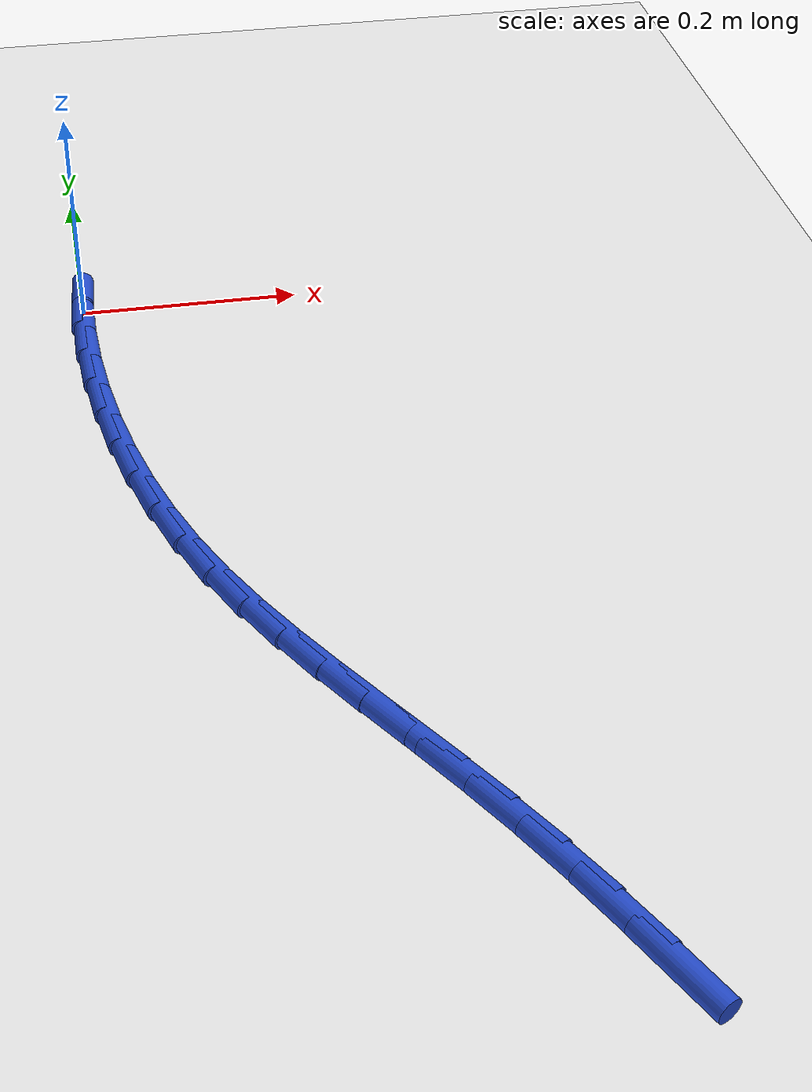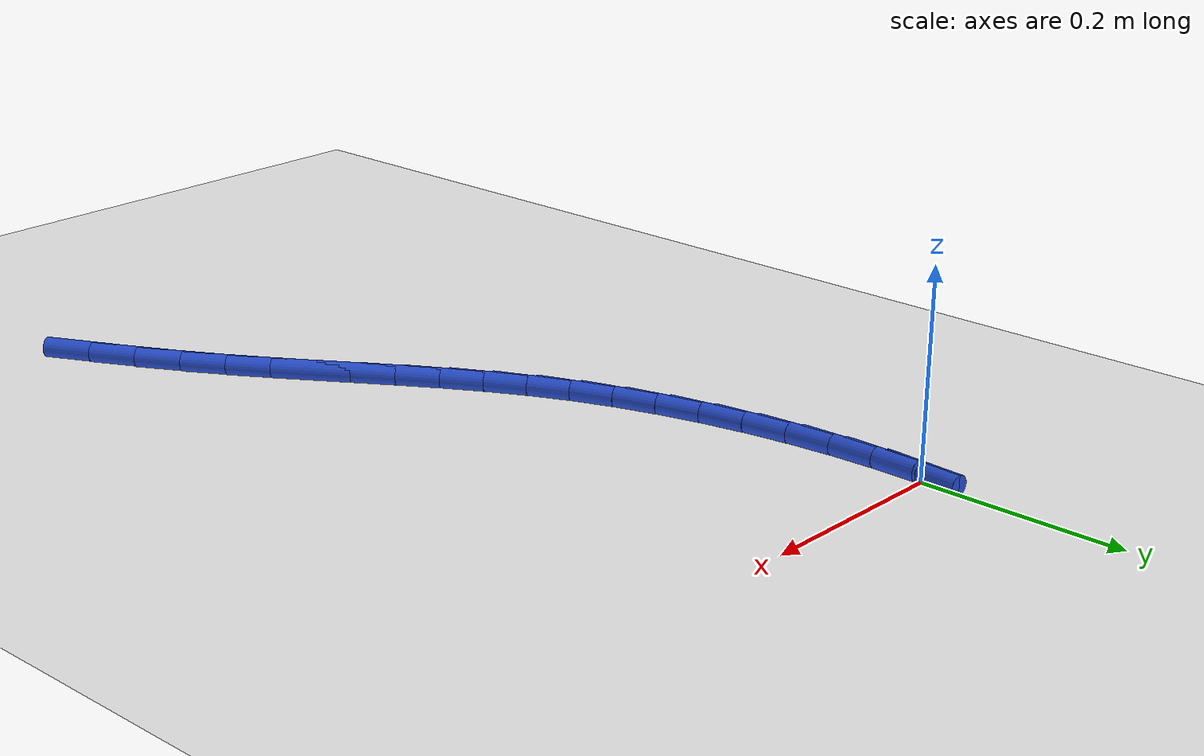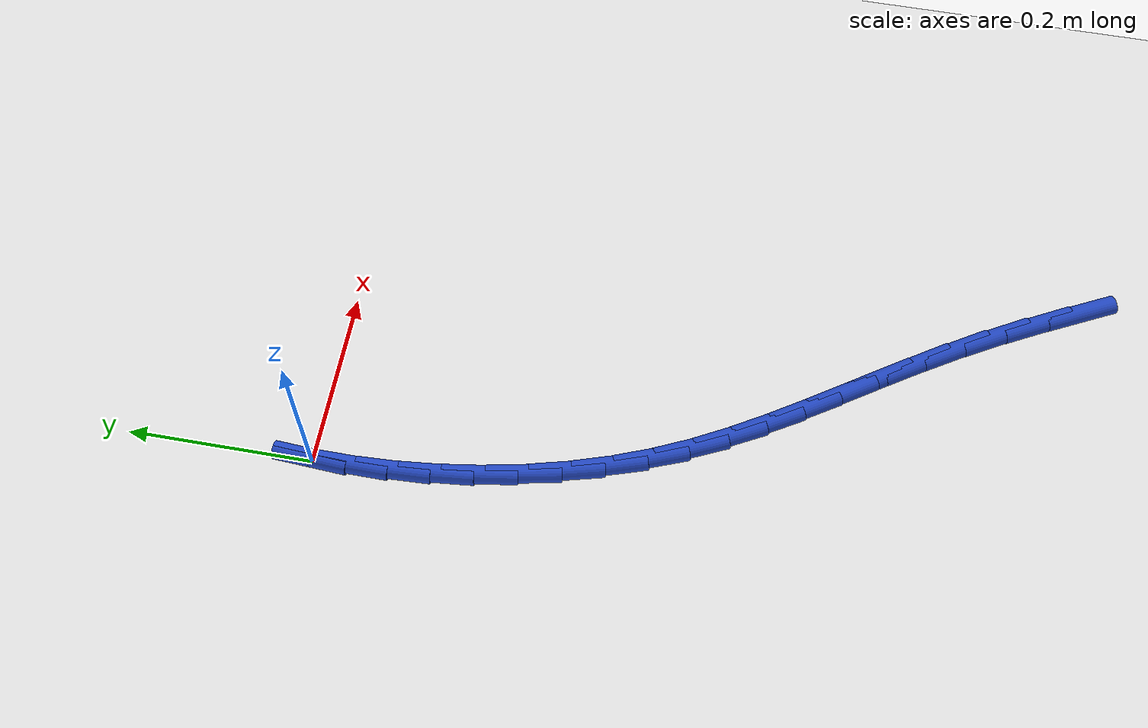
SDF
<sdf version="1.6">
 <world name="default">
  <model name="ground_plane">
   <static>1</static>
   <link name="link">
    <collision name="collision">
     <geometry><plane><normal>0 0 1</normal><size>100 100</size></plane></geometry>
     <surface><friction><ode><mu>100</mu><mu2>50</mu2></ode></friction></surface>
    </collision>
    <visual name="visual">
     <cast_shadows>0</cast_shadows>
     <geometry><plane><normal>0 0 1</normal><size>100 100</size></plane></geometry>
     <material>
      <script><uri>file://media/materials/scripts/gazebo.material</uri><name>Gazebo/WhiteGlow</name></script>
     </material>
    </visual>
   </link>
  </model>
  <model name="line">
   <link name="link_0">
    <pose>-2.42861286636753e-17 1.3877787807814457e-17 0.01 0 1.57 1.5093590978031826</pose>
    <collision name="collision">
     <geometry><cylinder><radius>0.01</radius><length>0.08</length></cylinder></geometry>
    </collision>
    <visual name="visual">
     <material>
      <script><name>Gazebo/Blue</name><uri>file://media/materials/scripts/gazebo.material</uri></script>
     </material>
     <geometry><cylinder><radius>0.01</radius><length>0.08</length></cylinder></geometry>
    </visual>
   </link>
   <link name="link_151">
    <pose>0.31954718172321966 -0.7833257417713722 0.01 0 1.57 -1.0980378931547705</pose>
    <collision name="collision">
     <geometry><cylinder><radius>0.01</radius><length>0.08</length></cylinder></geometry>
    </collision>
    <visual name="visual">
     <material>
      <script><name>Gazebo/Blue</name><uri>file://media/materials/scripts/gazebo.material</uri></script>
     </material>
     <geometry><cylinder><radius>0.01</radius><length>0.08</length></cylinder></geometry>
    </visual>
   </link>
   <link name="link_152">
    <pose>0.29666283121713005 -0.7385808893996484 0.01 0 1.57 -1.0761479321195955</pose>
    <collision name="collision">
     <geometry><cylinder><radius>0.01</radius><length>0.08</length></cylinder></geometry>
    </collision>
    <visual name="visual">
     <material>
      <script><name>Gazebo/Blue</name><uri>file://media/materials/scripts/gazebo.material</uri></script>
     </material>
     <geometry><cylinder><radius>0.01</radius><length>0.08</length></cylinder></geometry>
    </visual>
   </link>
   <link name="link_153">
    <pose>0.2732263872886381 -0.6951296886477155 0.01 0 1.57 -1.0427061662306767</pose>
    <collision name="collision">
     <geometry><cylinder><radius>0.01</radius><length>0.08</length></cylinder></geometry>
    </collision>
    <visual name="visual">
     <material>
      <script><name>Gazebo/Blue</name><uri>file://media/materials/scripts/gazebo.material</uri></script>
     </material>
     <geometry><cylinder><radius>0.01</radius><length>0.08</length></cylinder></geometry>
    </visual>
   </link>
   <link name="link_154">
    <pose>0.2489981603960006 -0.6535970847650031 0.01 0 1.57 -1.007890727162185</pose>
    <collision name="collision">
     <geometry><cylinder><radius>0.01</radius><length>0.08</length></cylinder></geometry>
    </collision>
    <visual name="visual">
     <material>
      <script><name>Gazebo/Blue</name><uri>file://media/materials/scripts/gazebo.material</uri></script>
     </material>
     <geometry><cylinder><radius>0.01</radius><length>0.08</length></cylinder></geometry>
    </visual>
   </link>
   <link name="link_155">
    <pose>0.2240511537169838 -0.6140617062563223 0.01 0 1.57 -0.9841458100198458</pose>
    <collision name="collision">
     <geometry><cylinder><radius>0.01</radius><length>0.08</length></cylinder></geometry>
    </collision>
    <visual name="visual">
     <material>
      <script><name>Gazebo/Blue</name><uri>file://media/materials/scripts/gazebo.material</uri></script>
     </material>
     <geometry><cylinder><radius>0.01</radius><length>0.08</length></cylinder></geometry>
    </visual>
   </link>
   <link name="link_156">
    <pose>0.19877893884980272 -0.5760421049602923 0.01 0 1.57 -0.9732135594124044</pose>
    <collision name="collision">
     <geometry><cylinder><radius>0.01</radius><length>0.08</length></cylinder></geometry>
    </collision>
    <visual name="visual">
     <material>
      <script><name>Gazebo/Blue</name><uri>file://media/materials/scripts/gazebo.material</uri></script>
     </material>
     <geometry><cylinder><radius>0.01</radius><length>0.08</length></cylinder></geometry>
    </visual>
   </link>
   <link name="link_157">
    <pose>0.1735896573352705 -0.5390313770425583 0.01 0 1.57 -0.9760162981045596</pose>
    <collision name="collision">
     <geometry><cylinder><radius>0.01</radius><length>0.08</length></cylinder></geometry>
    </collision>
    <visual name="visual">
     <material>
      <script><name>Gazebo/Blue</name><uri>file://media/materials/scripts/gazebo.material</uri></script>
     </material>
     <geometry><cylinder><radius>0.01</radius><length>0.08</length></cylinder></geometry>
    </visual>
   </link>
   <link name="link_158">
    <pose>0.14889145071419968 -0.5025226186687642 0.01 0 1.57 -0.9931689684739092</pose>
    <collision name="collision">
     <geometry><cylinder><radius>0.01</radius><length>0.08</length></cylinder></geometry>
    </collision>
    <visual name="visual">
     <material>
      <script><name>Gazebo/Blue</name><uri>file://media/materials/scripts/gazebo.material</uri></script>
     </material>
     <geometry><cylinder><radius>0.01</radius><length>0.08</length></cylinder></geometry>
    </visual>
   </link>
   <link name="link_159">
    <pose>0.12509246052740441 -0.46600892600455623 0.01 0 1.57 -1.0249075432064954</pose>
    <collision name="collision">
     <geometry><cylinder><radius>0.01</radius><length>0.08</length></cylinder></geometry>
    </collision>
    <visual name="visual">
     <material>
      <script><name>Gazebo/Blue</name><uri>file://media/materials/scripts/gazebo.material</uri></script>
     </material>
     <geometry><cylinder><radius>0.01</radius><length>0.08</length></cylinder></geometry>
    </visual>
   </link>
   <link name="link_160">
    <pose>0.10260082831569727 -0.42898339521557827 0.01 0 1.57 -1.0709491425404833</pose>
    <collision name="collision">
     <geometry><cylinder><radius>0.01</radius><length>0.08</length></cylinder></geometry>
    </collision>
    <visual name="visual">
     <material>
      <script><name>Gazebo/Blue</name><uri>file://media/materials/scripts/gazebo.material</uri></script>
     </material>
     <geometry><cylinder><radius>0.01</radius><length>0.08</length></cylinder></geometry>
    </visual>
   </link>
   <link name="link_161">
    <pose>0.08182469561989134 -0.3909391224674754 0.01 0 1.57 -1.1302630596554122</pose>
    <collision name="collision">
     <geometry><cylinder><radius>0.01</radius><length>0.08</length></cylinder></geometry>
    </collision>
    <visual name="visual">
     <material>
      <script><name>Gazebo/Blue</name><uri>file://media/materials/scripts/gazebo.material</uri></script>
     </material>
     <geometry><cylinder><radius>0.01</radius><length>0.08</length></cylinder></geometry>
    </visual>
   </link>
   <link name="link_162">
    <pose>0.06317116787389836 -0.35137133352725647 0.01 0 1.57 -1.1960394492933477</pose>
    <collision name="collision">
     <geometry><cylinder><radius>0.01</radius><length>0.08</length></cylinder></geometry>
    </collision>
    <visual name="visual">
     <material>
      <script><name>Gazebo/Blue</name><uri>file://media/materials/scripts/gazebo.material</uri></script>
     </material>
     <geometry><cylinder><radius>0.01</radius><length>0.08</length></cylinder></geometry>
    </visual>
   </link>
   <link name="link_163">
    <pose>0.046915844256710804 -0.3100455504986434 0.01 0 1.57 -1.2579449465191268</pose>
    <collision name="collision">
     <geometry><cylinder><radius>0.01</radius><length>0.08</length></cylinder></geometry>
    </collision>
    <visual name="visual">
     <material>
      <script><name>Gazebo/Blue</name><uri>file://media/materials/scripts/gazebo.material</uri></script>
     </material>
     <geometry><cylinder><radius>0.01</radius><length>0.08</length></cylinder></geometry>
    </visual>
   </link>
   <link name="link_164">
    <pose>0.03307554986415652 -0.2672591765488058 0.01 0 1.57 -1.3158328125367527</pose>
    <collision name="collision">
     <geometry><cylinder><radius>0.01</radius><length>0.08</length></cylinder></geometry>
    </collision>
    <visual name="visual">
     <material>
      <script><name>Gazebo/Blue</name><uri>file://media/materials/scripts/gazebo.material</uri></script>
     </material>
     <geometry><cylinder><radius>0.01</radius><length>0.08</length></cylinder></geometry>
    </visual>
   </link>
   <link name="link_165">
    <pose>0.02163690260291152 -0.22337170232945647 0.01 0 1.57 -1.370718436852727</pose>
    <collision name="collision">
     <geometry><cylinder><radius>0.01</radius><length>0.08</length></cylinder></geometry>
    </collision>
    <visual name="visual">
     <material>
      <script><name>Gazebo/Blue</name><uri>file://media/materials/scripts/gazebo.material</uri></script>
     </material>
     <geometry><cylinder><radius>0.01</radius><length>0.08</length></cylinder></geometry>
    </visual>
   </link>
   <link name="link_166">
    <pose>0.012586520379652216 -0.1787426184923087 0.01 0 1.57 -1.4235620385480667</pose>
    <collision name="collision">
     <geometry><cylinder><radius>0.01</radius><length>0.08</length></cylinder></geometry>
    </collision>
    <visual name="visual">
     <material>
      <script><name>Gazebo/Blue</name><uri>file://media/materials/scripts/gazebo.material</uri></script>
     </material>
     <geometry><cylinder><radius>0.01</radius><length>0.08</length></cylinder></geometry>
    </visual>
   </link>
   <link name="link_167">
    <pose>0.005911021101055012 -0.13373141568907587 0.01 0 1.57 -1.4752931340442643</pose>
    <collision name="collision">
     <geometry><cylinder><radius>0.01</radius><length>0.08</length></cylinder></geometry>
    </collision>
    <visual name="visual">
     <material>
      <script><name>Gazebo/Blue</name><uri>file://media/materials/scripts/gazebo.material</uri></script>
     </material>
     <geometry><cylinder><radius>0.01</radius><length>0.08</length></cylinder></geometry>
    </visual>
   </link>
   <link name="link_168">
    <pose>0.0015970226737962428 -0.08869758457147052 0.01 0 1.57 -1.5268422610150478</pose>
    <collision name="collision">
     <geometry><cylinder><radius>0.01</radius><length>0.08</length></cylinder></geometry>
    </collision>
    <visual name="visual">
     <material>
      <script><name>Gazebo/Blue</name><uri>file://media/materials/scripts/gazebo.material</uri></script>
     </material>
     <geometry><cylinder><radius>0.01</radius><length>0.08</length></cylinder></geometry>
    </visual>
   </link>
   <link name="link_169">
    <pose>-0.00036885699544752897 -0.04400061579120779 0.01 0 1.57 1.562413526946526</pose>
    <collision name="collision">
     <geometry><cylinder><radius>0.01</radius><length>0.08</length></cylinder></geometry>
    </collision>
    <visual name="visual">
     <material>
      <script><name>Gazebo/Blue</name><uri>file://media/materials/scripts/gazebo.material</uri></script>
     </material>
     <geometry><cylinder><radius>0.01</radius><length>0.08</length></cylinder></geometry>
    </visual>
   </link>
   <link name="link_170">
    <pose>-1.214306433183765e-17 -1.5265566588595902e-16 0.01 0 1.57 1.5082345594500293</pose>
    <collision name="collision">
     <geometry><cylinder><radius>0.01</radius><length>0.08</length></cylinder></geometry>
    </collision>
    <visual name="visual">
     <material>
      <script><name>Gazebo/Blue</name><uri>file://media/materials/scripts/gazebo.material</uri></script>
     </material>
     <geometry><cylinder><radius>0.01</radius><length>0.08</length></cylinder></geometry>
    </visual>
   </link>
  </model>
 </world>
</sdf>
